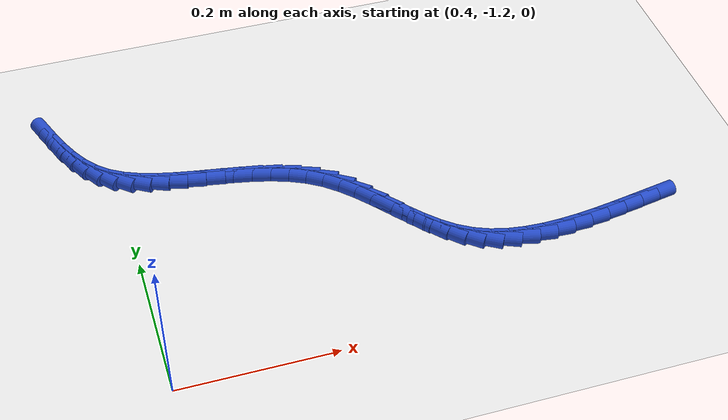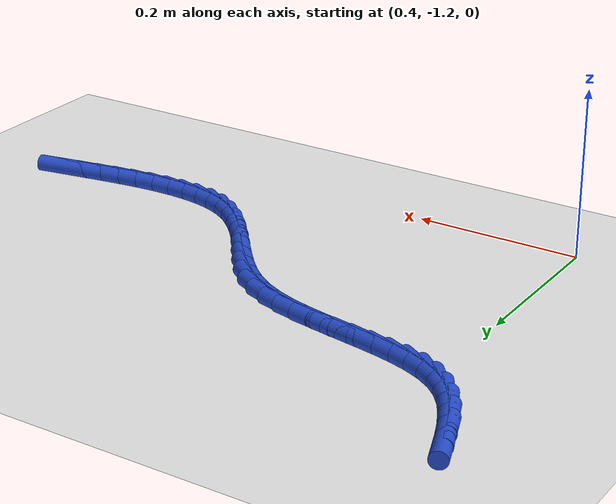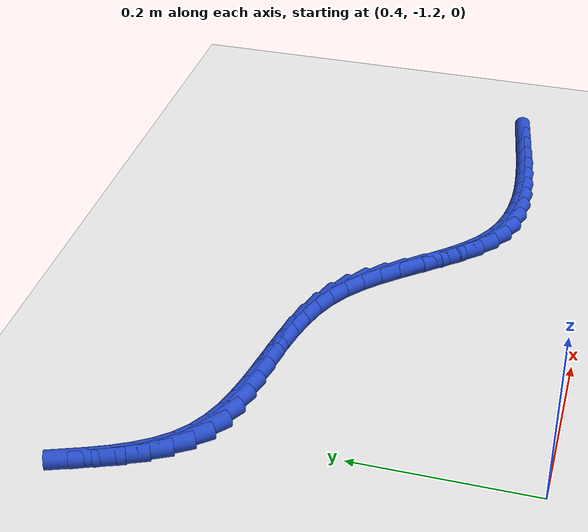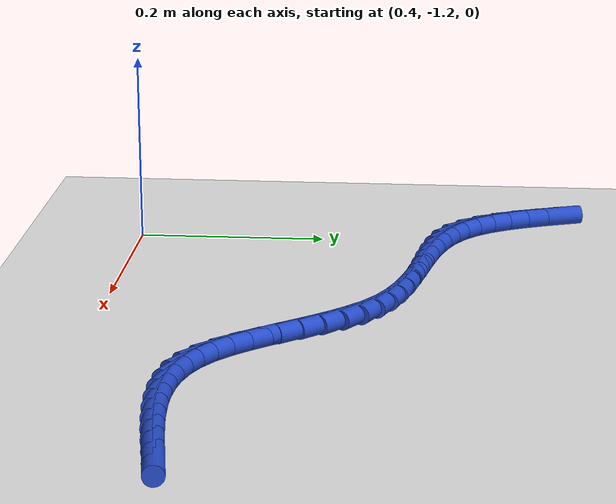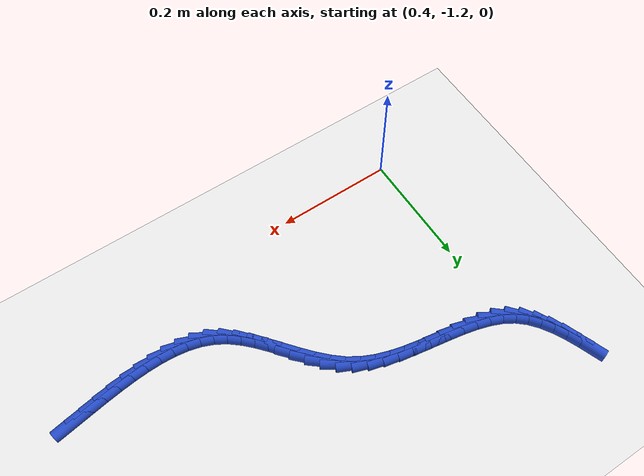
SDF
<sdf version="1.6">
 <world name="default">
  <model name="ground_plane">
   <static>1</static>
   <link name="link">
    <collision name="collision">
     <geometry><plane><normal>0 0 1</normal><size>100 100</size></plane></geometry>
     <surface><friction><ode><mu>100</mu><mu2>50</mu2></ode></friction></surface>
    </collision>
    <visual name="visual">
     <cast_shadows>0</cast_shadows>
     <geometry><plane><normal>0 0 1</normal><size>100 100</size></plane></geometry>
     <material>
      <script><uri>file://media/materials/scripts/gazebo.material</uri><name>Gazebo/WhiteGlow</name></script>
     </material>
    </visual>
   </link>
  </model>
  <model name="line">
   <link name="link_218">
    <pose>1.0404215128794456 -1.0819828975635988 0.01 0 1.57 0.16826609510077176</pose>
    <collision name="collision">
     <geometry><cylinder><radius>0.01</radius><length>0.08</length></cylinder></geometry>
    </collision>
    <visual name="visual">
     <material>
      <script><name>Gazebo/Blue</name><uri>file://media/materials/scripts/gazebo.material</uri></script>
     </material>
     <geometry><cylinder><radius>0.01</radius><length>0.08</length></cylinder></geometry>
    </visual>
   </link>
   <link name="link_219">
    <pose>1.015709352989195 -1.0861808103675081 0.01 0 1.57 0.16267788604713201</pose>
    <collision name="collision">
     <geometry><cylinder><radius>0.01</radius><length>0.08</length></cylinder></geometry>
    </collision>
    <visual name="visual">
     <material>
      <script><name>Gazebo/Blue</name><uri>file://media/materials/scripts/gazebo.material</uri></script>
     </material>
     <geometry><cylinder><radius>0.01</radius><length>0.08</length></cylinder></geometry>
    </visual>
   </link>
   <link name="link_220">
    <pose>0.9907379211857545 -1.090279328577057 0.01 0 1.57 0.14572347196612379</pose>
    <collision name="collision">
     <geometry><cylinder><radius>0.01</radius><length>0.08</length></cylinder></geometry>
    </collision>
    <visual name="visual">
     <material>
      <script><name>Gazebo/Blue</name><uri>file://media/materials/scripts/gazebo.material</uri></script>
     </material>
     <geometry><cylinder><radius>0.01</radius><length>0.08</length></cylinder></geometry>
    </visual>
   </link>
   <link name="link_221">
    <pose>0.9657035422751633 -1.0939534692802497 0.01 0 1.57 0.11692061812904417</pose>
    <collision name="collision">
     <geometry><cylinder><radius>0.01</radius><length>0.08</length></cylinder></geometry>
    </collision>
    <visual name="visual">
     <material>
      <script><name>Gazebo/Blue</name><uri>file://media/materials/scripts/gazebo.material</uri></script>
     </material>
     <geometry><cylinder><radius>0.01</radius><length>0.08</length></cylinder></geometry>
    </visual>
   </link>
   <link name="link_222">
    <pose>0.9408025410634605 -1.0968782495650913 0.01 0 1.57 0.07516699162913229</pose>
    <collision name="collision">
     <geometry><cylinder><radius>0.01</radius><length>0.08</length></cylinder></geometry>
    </collision>
    <visual name="visual">
     <material>
      <script><name>Gazebo/Blue</name><uri>file://media/materials/scripts/gazebo.material</uri></script>
     </material>
     <geometry><cylinder><radius>0.01</radius><length>0.08</length></cylinder></geometry>
    </visual>
   </link>
   <link name="link_223">
    <pose>0.9162312423566857 -1.0987286865195864 0.01 0 1.57 0.018758690219644</pose>
    <collision name="collision">
     <geometry><cylinder><radius>0.01</radius><length>0.08</length></cylinder></geometry>
    </collision>
    <visual name="visual">
     <material>
      <script><name>Gazebo/Blue</name><uri>file://media/materials/scripts/gazebo.material</uri></script>
     </material>
     <geometry><cylinder><radius>0.01</radius><length>0.08</length></cylinder></geometry>
    </visual>
   </link>
   <link name="link_224">
    <pose>0.8921859709608784 -1.09917979723174 0.01 0 1.57 -0.05453588136526284</pose>
    <collision name="collision">
     <geometry><cylinder><radius>0.01</radius><length>0.08</length></cylinder></geometry>
    </collision>
    <visual name="visual">
     <material>
      <script><name>Gazebo/Blue</name><uri>file://media/materials/scripts/gazebo.material</uri></script>
     </material>
     <geometry><cylinder><radius>0.01</radius><length>0.08</length></cylinder></geometry>
    </visual>
   </link>
   <link name="link_225">
    <pose>0.8688630516820771 -1.0979065987895569 0.01 0 1.57 -0.14722438199516946</pose>
    <collision name="collision">
     <geometry><cylinder><radius>0.01</radius><length>0.08</length></cylinder></geometry>
    </collision>
    <visual name="visual">
     <material>
      <script><name>Gazebo/Blue</name><uri>file://media/materials/scripts/gazebo.material</uri></script>
     </material>
     <geometry><cylinder><radius>0.01</radius><length>0.08</length></cylinder></geometry>
    </visual>
   </link>
   <link name="link_226">
    <pose>0.8464588093263217 -1.0945841082810417 0.01 0 1.57 -0.26146324419973255</pose>
    <collision name="collision">
     <geometry><cylinder><radius>0.01</radius><length>0.08</length></cylinder></geometry>
    </collision>
    <visual name="visual">
     <material>
      <script><name>Gazebo/Blue</name><uri>file://media/materials/scripts/gazebo.material</uri></script>
     </material>
     <geometry><cylinder><radius>0.01</radius><length>0.08</length></cylinder></geometry>
    </visual>
   </link>
   <link name="link_227">
    <pose>0.8251695686996511 -1.088887342794199 0.01 0 1.57 -0.39785345968210034</pose>
    <collision name="collision">
     <geometry><cylinder><radius>0.01</radius><length>0.08</length></cylinder></geometry>
    </collision>
    <visual name="visual">
     <material>
      <script><name>Gazebo/Blue</name><uri>file://media/materials/scripts/gazebo.material</uri></script>
     </material>
     <geometry><cylinder><radius>0.01</radius><length>0.08</length></cylinder></geometry>
    </visual>
   </link>
   <link name="link_228">
    <pose>0.8051916546081047 -1.0804913194170338 0.01 0 1.57 -0.5524752765866365</pose>
    <collision name="collision">
     <geometry><cylinder><radius>0.01</radius><length>0.08</length></cylinder></geometry>
    </collision>
    <visual name="visual">
     <material>
      <script><name>Gazebo/Blue</name><uri>file://media/materials/scripts/gazebo.material</uri></script>
     </material>
     <geometry><cylinder><radius>0.01</radius><length>0.08</length></cylinder></geometry>
    </visual>
   </link>
   <link name="link_229">
    <pose>0.7867072156032245 -1.0690953647129766 0.01 0 1.57 -0.6932338058297657</pose>
    <collision name="collision">
     <geometry><cylinder><radius>0.01</radius><length>0.08</length></cylinder></geometry>
    </collision>
    <visual name="visual">
     <material>
      <script><name>Gazebo/Blue</name><uri>file://media/materials/scripts/gazebo.material</uri></script>
     </material>
     <geometry><cylinder><radius>0.01</radius><length>0.08</length></cylinder></geometry>
    </visual>
   </link>
   <link name="link_230">
    <pose>0.7696108403691431 -1.0548919136000945 0.01 0 1.57 -0.7939708132409857</pose>
    <collision name="collision">
     <geometry><cylinder><radius>0.01</radius><length>0.08</length></cylinder></geometry>
    </collision>
    <visual name="visual">
     <material>
      <script><name>Gazebo/Blue</name><uri>file://media/materials/scripts/gazebo.material</uri></script>
     </material>
     <geometry><cylinder><radius>0.01</radius><length>0.08</length></cylinder></geometry>
    </visual>
   </link>
   <link name="link_231">
    <pose>0.75352944488124 -1.0385324068034338 0.01 0 1.57 -0.8572626416833529</pose>
    <collision name="collision">
     <geometry><cylinder><radius>0.01</radius><length>0.08</length></cylinder></geometry>
    </collision>
    <visual name="visual">
     <material>
      <script><name>Gazebo/Blue</name><uri>file://media/materials/scripts/gazebo.material</uri></script>
     </material>
     <geometry><cylinder><radius>0.01</radius><length>0.08</length></cylinder></geometry>
    </visual>
   </link>
   <link name="link_232">
    <pose>0.7380797526970647 -1.0206857630307338 0.01 0 1.57 -0.8873169841298827</pose>
    <collision name="collision">
     <geometry><cylinder><radius>0.01</radius><length>0.08</length></cylinder></geometry>
    </collision>
    <visual name="visual">
     <material>
      <script><name>Gazebo/Blue</name><uri>file://media/materials/scripts/gazebo.material</uri></script>
     </material>
     <geometry><cylinder><radius>0.01</radius><length>0.08</length></cylinder></geometry>
    </visual>
   </link>
   <link name="link_233">
    <pose>0.7228784873741677 -1.0020209009897345 0.01 0 1.57 -0.8868935544979394</pose>
    <collision name="collision">
     <geometry><cylinder><radius>0.01</radius><length>0.08</length></cylinder></geometry>
    </collision>
    <visual name="visual">
     <material>
      <script><name>Gazebo/Blue</name><uri>file://media/materials/scripts/gazebo.material</uri></script>
     </material>
     <geometry><cylinder><radius>0.01</radius><length>0.08</length></cylinder></geometry>
    </visual>
   </link>
   <link name="link_234">
    <pose>0.7075423724700973 -0.9832067393881724 0.01 0 1.57 -0.8567377556416764</pose>
    <collision name="collision">
     <geometry><cylinder><radius>0.01</radius><length>0.08</length></cylinder></geometry>
    </collision>
    <visual name="visual">
     <material>
      <script><name>Gazebo/Blue</name><uri>file://media/materials/scripts/gazebo.material</uri></script>
     </material>
     <geometry><cylinder><radius>0.01</radius><length>0.08</length></cylinder></geometry>
    </visual>
   </link>
   <link name="link_235">
    <pose>0.6916881315424043 -0.9649121969337885 0.01 0 1.57 -0.7957446386687774</pose>
    <collision name="collision">
     <geometry><cylinder><radius>0.01</radius><length>0.08</length></cylinder></geometry>
    </collision>
    <visual name="visual">
     <material>
      <script><name>Gazebo/Blue</name><uri>file://media/materials/scripts/gazebo.material</uri></script>
     </material>
     <geometry><cylinder><radius>0.01</radius><length>0.08</length></cylinder></geometry>
    </visual>
   </link>
   <link name="link_236">
    <pose>0.6749324881486377 -0.9478061923343211 0.01 0 1.57 -0.7017288606897808</pose>
    <collision name="collision">
     <geometry><cylinder><radius>0.01</radius><length>0.08</length></cylinder></geometry>
    </collision>
    <visual name="visual">
     <material>
      <script><name>Gazebo/Blue</name><uri>file://media/materials/scripts/gazebo.material</uri></script>
     </material>
     <geometry><cylinder><radius>0.01</radius><length>0.08</length></cylinder></geometry>
    </visual>
   </link>
   <link name="link_237">
    <pose>0.6568921658463476 -0.9325576442975095 0.01 0 1.57 -0.5739231292550048</pose>
    <collision name="collision">
     <geometry><cylinder><radius>0.01</radius><length>0.08</length></cylinder></geometry>
    </collision>
    <visual name="visual">
     <material>
      <script><name>Gazebo/Blue</name><uri>file://media/materials/scripts/gazebo.material</uri></script>
     </material>
     <geometry><cylinder><radius>0.01</radius><length>0.08</length></cylinder></geometry>
    </visual>
   </link>
   <link name="link_238">
    <pose>0.637192823149273 -0.9198216756124725 0.01 0 1.57 -0.43947059322613025</pose>
    <collision name="collision">
     <geometry><cylinder><radius>0.01</radius><length>0.08</length></cylinder></geometry>
    </collision>
    <visual name="visual">
     <material>
      <script><name>Gazebo/Blue</name><uri>file://media/materials/scripts/gazebo.material</uri></script>
     </material>
     <geometry><cylinder><radius>0.01</radius><length>0.08</length></cylinder></geometry>
    </visual>
   </link>
   <link name="link_239">
    <pose>0.6157823429938816 -0.9097558820721847 0.01 0 1.57 -0.33250360550545455</pose>
    <collision name="collision">
     <geometry><cylinder><radius>0.01</radius><length>0.08</length></cylinder></geometry>
    </collision>
    <visual name="visual">
     <material>
      <script><name>Gazebo/Blue</name><uri>file://media/materials/scripts/gazebo.material</uri></script>
     </material>
     <geometry><cylinder><radius>0.01</radius><length>0.08</length></cylinder></geometry>
    </visual>
   </link>
   <link name="link_240">
    <pose>0.593013209318711 -0.9018931398425646 0.01 0 1.57 -0.2540351866405098</pose>
    <collision name="collision">
     <geometry><cylinder><radius>0.01</radius><length>0.08</length></cylinder></geometry>
    </collision>
    <visual name="visual">
     <material>
      <script><name>Gazebo/Blue</name><uri>file://media/materials/scripts/gazebo.material</uri></script>
     </material>
     <geometry><cylinder><radius>0.01</radius><length>0.08</length></cylinder></geometry>
    </visual>
   </link>
   <link name="link_241">
    <pose>0.5692635844592526 -0.8957266766494948 0.01 0 1.57 -0.20159975011721648</pose>
    <collision name="collision">
     <geometry><cylinder><radius>0.01</radius><length>0.08</length></cylinder></geometry>
    </collision>
    <visual name="visual">
     <material>
      <script><name>Gazebo/Blue</name><uri>file://media/materials/scripts/gazebo.material</uri></script>
     </material>
     <geometry><cylinder><radius>0.01</radius><length>0.08</length></cylinder></geometry>
    </visual>
   </link>
   <link name="link_242">
    <pose>0.5449116307509981 -0.8907497202188578 0.01 0 1.57 -0.17298511693558435</pose>
    <collision name="collision">
     <geometry><cylinder><radius>0.01</radius><length>0.08</length></cylinder></geometry>
    </collision>
    <visual name="visual">
     <material>
      <script><name>Gazebo/Blue</name><uri>file://media/materials/scripts/gazebo.material</uri></script>
     </material>
     <geometry><cylinder><radius>0.01</radius><length>0.08</length></cylinder></geometry>
    </visual>
   </link>
   <link name="link_243">
    <pose>0.5203355105294392 -0.8864554982765365 0.01 0 1.57 -0.1670566209988346</pose>
    <collision name="collision">
     <geometry><cylinder><radius>0.01</radius><length>0.08</length></cylinder></geometry>
    </collision>
    <visual name="visual">
     <material>
      <script><name>Gazebo/Blue</name><uri>file://media/materials/scripts/gazebo.material</uri></script>
     </material>
     <geometry><cylinder><radius>0.01</radius><length>0.08</length></cylinder></geometry>
    </visual>
   </link>
   <link name="link_244">
    <pose>0.49591338613006725 -0.8823372385484134 0.01 0 1.57 -0.18412247423670058</pose>
    <collision name="collision">
     <geometry><cylinder><radius>0.01</radius><length>0.08</length></cylinder></geometry>
    </collision>
    <visual name="visual">
     <material>
      <script><name>Gazebo/Blue</name><uri>file://media/materials/scripts/gazebo.material</uri></script>
     </material>
     <geometry><cylinder><radius>0.01</radius><length>0.08</length></cylinder></geometry>
    </visual>
   </link>
   <link name="link_245">
    <pose>0.4720234198883742 -0.8778881687603712 0.01 0 1.57 -0.2261235055050923</pose>
    <collision name="collision">
     <geometry><cylinder><radius>0.01</radius><length>0.08</length></cylinder></geometry>
    </collision>
    <visual name="visual">
     <material>
      <script><name>Gazebo/Blue</name><uri>file://media/materials/scripts/gazebo.material</uri></script>
     </material>
     <geometry><cylinder><radius>0.01</radius><length>0.08</length></cylinder></geometry>
    </visual>
   </link>
   <link name="link_246">
    <pose>0.44904377413985136 -0.8726015166382928 0.01 0 1.57 -0.29667868224986693</pose>
    <collision name="collision">
     <geometry><cylinder><radius>0.01</radius><length>0.08</length></cylinder></geometry>
    </collision>
    <visual name="visual">
     <material>
      <script><name>Gazebo/Blue</name><uri>file://media/materials/scripts/gazebo.material</uri></script>
     </material>
     <geometry><cylinder><radius>0.01</radius><length>0.08</length></cylinder></geometry>
    </visual>
   </link>
   <link name="link_247">
    <pose>0.42735261121999063 -0.8659705099080606 0.01 0 1.57 -0.4006735628431859</pose>
    <collision name="collision">
     <geometry><cylinder><radius>0.01</radius><length>0.08</length></cylinder></geometry>
    </collision>
    <visual name="visual">
     <material>
      <script><name>Gazebo/Blue</name><uri>file://media/materials/scripts/gazebo.material</uri></script>
     </material>
     <geometry><cylinder><radius>0.01</radius><length>0.08</length></cylinder></geometry>
    </visual>
   </link>
   <link name="link_248">
    <pose>0.40732809346428406 -0.8574883762955573 0.01 0 1.57 -0.5425517953215726</pose>
    <collision name="collision">
     <geometry><cylinder><radius>0.01</radius><length>0.08</length></cylinder></geometry>
    </collision>
    <visual name="visual">
     <material>
      <script><name>Gazebo/Blue</name><uri>file://media/materials/scripts/gazebo.material</uri></script>
     </material>
     <geometry><cylinder><radius>0.01</radius><length>0.08</length></cylinder></geometry>
    </visual>
   </link>
   <link name="link_249">
    <pose>0.38934838320822207 -0.8466483435266652 0.01 0 1.57 -0.7178827801958999</pose>
    <collision name="collision">
     <geometry><cylinder><radius>0.01</radius><length>0.08</length></cylinder></geometry>
    </collision>
    <visual name="visual">
     <material>
      <script><name>Gazebo/Blue</name><uri>file://media/materials/scripts/gazebo.material</uri></script>
     </material>
     <geometry><cylinder><radius>0.01</radius><length>0.08</length></cylinder></geometry>
    </visual>
   </link>
   <link name="link_250">
    <pose>0.3737343364957027 -0.8330121445029067 0.01 0 1.57 -0.8827606935713205</pose>
    <collision name="collision">
     <geometry><cylinder><radius>0.01</radius><length>0.08</length></cylinder></geometry>
    </collision>
    <visual name="visual">
     <material>
      <script><name>Gazebo/Blue</name><uri>file://media/materials/scripts/gazebo.material</uri></script>
     </material>
     <geometry><cylinder><radius>0.01</radius><length>0.08</length></cylinder></geometry>
    </visual>
   </link>
   <link name="link_251">
    <pose>0.36033230564666896 -0.8167087441006293 0.01 0 1.57 -1.013082123996641</pose>
    <collision name="collision">
     <geometry><cylinder><radius>0.01</radius><length>0.08</length></cylinder></geometry>
    </collision>
    <visual name="visual">
     <material>
      <script><name>Gazebo/Blue</name><uri>file://media/materials/scripts/gazebo.material</uri></script>
     </material>
     <geometry><cylinder><radius>0.01</radius><length>0.08</length></cylinder></geometry>
    </visual>
   </link>
   <link name="link_252">
    <pose>0.3487542445541451 -0.7981473121258477 0.01 0 1.57 -1.1095175110323185</pose>
    <collision name="collision">
     <geometry><cylinder><radius>0.01</radius><length>0.08</length></cylinder></geometry>
    </collision>
    <visual name="visual">
     <material>
      <script><name>Gazebo/Blue</name><uri>file://media/materials/scripts/gazebo.material</uri></script>
     </material>
     <geometry><cylinder><radius>0.01</radius><length>0.08</length></cylinder></geometry>
    </visual>
   </link>
   <link name="link_253">
    <pose>0.3386104472550701 -0.7777390026123024 0.01 0 1.57 -1.1761004253225231</pose>
    <collision name="collision">
     <geometry><cylinder><radius>0.01</radius><length>0.08</length></cylinder></geometry>
    </collision>
    <visual name="visual">
     <material>
      <script><name>Gazebo/Blue</name><uri>file://media/materials/scripts/gazebo.material</uri></script>
     </material>
     <geometry><cylinder><radius>0.01</radius><length>0.08</length></cylinder></geometry>
    </visual>
   </link>
   <link name="link_254">
    <pose>0.3295112077863825 -0.7558949695937344 0.01 0 1.57 -1.2170702491105068</pose>
    <collision name="collision">
     <geometry><cylinder><radius>0.01</radius><length>0.08</length></cylinder></geometry>
    </collision>
    <visual name="visual">
     <material>
      <script><name>Gazebo/Blue</name><uri>file://media/materials/scripts/gazebo.material</uri></script>
     </material>
     <geometry><cylinder><radius>0.01</radius><length>0.08</length></cylinder></geometry>
    </visual>
   </link>
  </model>
 </world>
</sdf>
